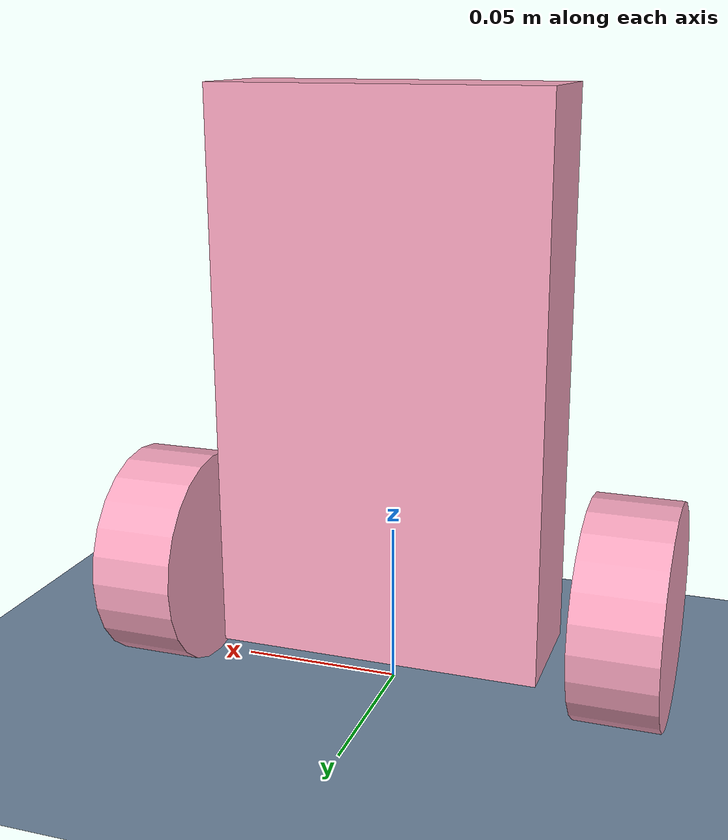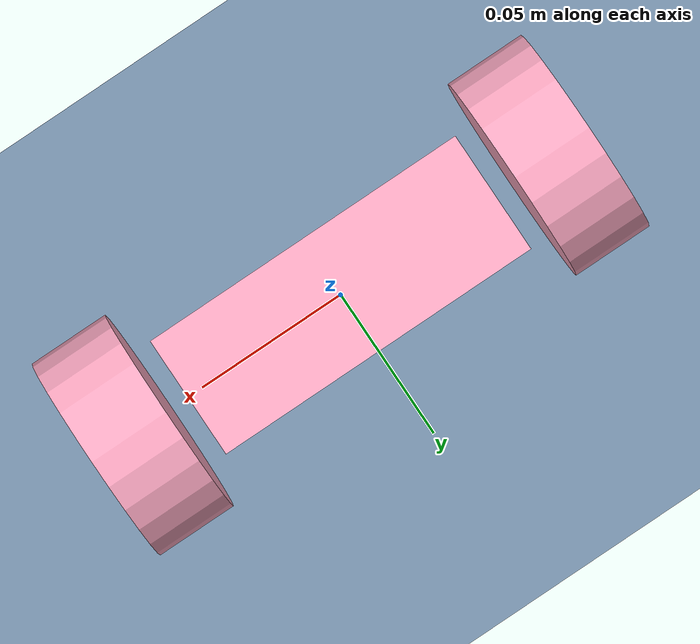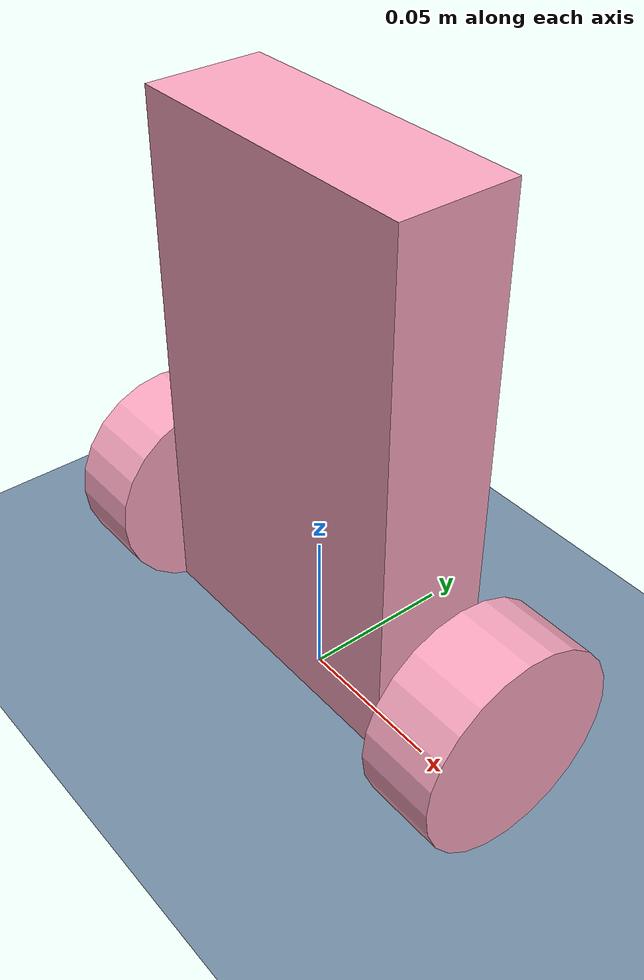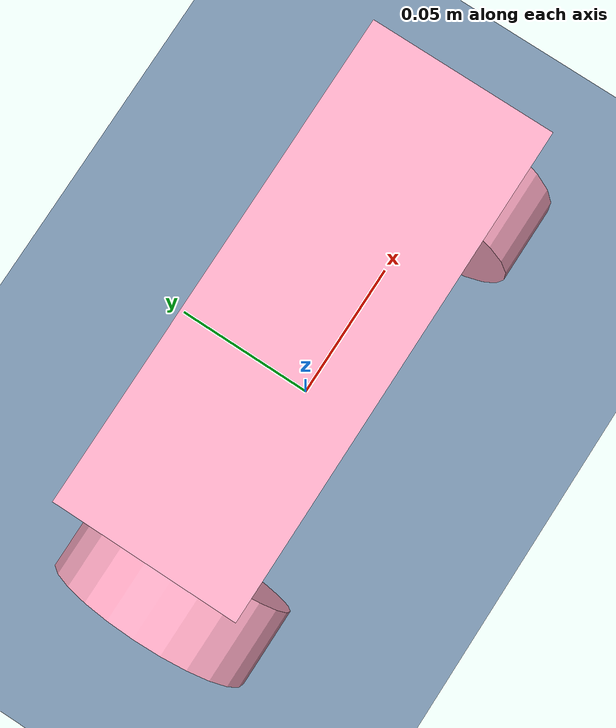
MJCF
<mujoco model="robot scene">
  <compiler angle="radian"/>
  <option timestep="0.000025"/>
  <include file="robot-02.xml"/>
  <statistic center="0.3 0 0.4" extent="0.8"/>

  <visual>
    <headlight diffuse="0.6 0.6 0.6" ambient="0.1 0.1 0.1" specular="0 0 0"/>
    <rgba haze="0.15 0.25 0.35 1"/>
    <global azimuth="120" elevation="-20" fovy="90"/>
  </visual>

  <asset>
    <texture type="skybox" builtin="gradient" rgb1="0.3 0.5 0.7" rgb2="0 0 0" width="512" height="3072"/>
    <texture type="2d" name="groundplane" builtin="checker" mark="edge" rgb1="0.5 0.6 0.7" rgb2="0.4 0.5 0.6"
             markrgb="1 1 1" width="300" height="300"/>
    <material name="groundplane" texture="groundplane" texuniform="true" texrepeat="0.5 0.5" reflectance="0.2"/>
        <texture type="2d" name="wheel_texture" builtin="checker" mark="edge" rgb1="1 1 1" rgb2="0.95 0.3 0.5"
                 markrgb="0.3 0.3 0.3" width="1024" height="1024"/>
        <material name="wheel_material" texture="wheel_texture" texuniform="true" texrepeat="30 30"/>
        <texture type="2d" name="body_texture" builtin="gradient" rgb1="1 1 1"
                 rgb2="0.95 0.3 0.5" width="512" height="512"/>
        <material name="body_material" texture="body_texture" texrepeat="2 2" shininess="0.3"/>
  </asset>

  <worldbody>
    <light pos="0 0 1.5" dir="0 0 -1" directional="true"/>
    <geom name="floor" type="plane" size="0 0 0.05" pos="0 0 0" material="groundplane" friction="2 2 2"
          contype="1" conaffinity="2"/>
  </worldbody>

  <contact>
    <pair geom1="floor" geom2="l_wheel_geom" friction="0.4 0.4 0.07 0.001 0.001"/>
    <pair geom1="floor" geom2="r_wheel_geom" friction="0.4 0.4 0.07 0.001 0.001"/>
  </contact>
</mujoco>

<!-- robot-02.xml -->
<mujoco model="balance">
  <worldbody>
    <body name="robot_body">
      <joint name="robot_body_joint" type="free"/>
      <geom size="0.05 0.0185 0.0855" pos="0 0 0.0995" type="box" material="body_material" />
      <inertial pos="0 0.0 0.057" quat="0.707107 0 0 0.707107" mass="0.514" diaginertia="0.001311 0.0012568 0.000487"/>

      <body name="l_wheel" pos="-0.074 0 0.034">
        <inertial pos="0 0 0" quat="0.5 0.5 -0.5 0.5" mass="0.032" diaginertia="2.3e-05 1.3e-05 1.3e-05"/>
        <joint name="torso_l_wheel" type="hinge" pos="0 0 0" axis="-1 0 0" damping="0.1"/>
        <geom name="l_wheel_geom" size="0.034 0.013" quat="0.707107 0 0.707107 0" type="cylinder" material="wheel_material"/>
      </body>
      <body name="r_wheel" pos="0.074 0 0.034">
        <inertial pos="0 0 0" quat="0.5 0.5 -0.5 0.5" mass="0.032" diaginertia="2.3e-05 1.3e-05 1.3e-05"/>
        <joint name="torso_r_wheel" type="hinge" pos="0 0 0" axis="1 0 0" damping="0.1"/>
        <geom name="r_wheel_geom" size="0.034 0.013" quat="0.707107 0 0.707107 0" type="cylinder" material="wheel_material"/>
      </body>
    </body>
  </worldbody>

  <actuator>
    <velocity name="motor_l_wheel" joint="torso_l_wheel" gear="1" kv="0.9" ctrlrange="-200 200" ctrllimited="true"/>
    <velocity name="motor_r_wheel" joint="torso_r_wheel" gear="1" kv="0.9" ctrlrange="-200 200" ctrllimited="true"/>
  </actuator>
</mujoco>
